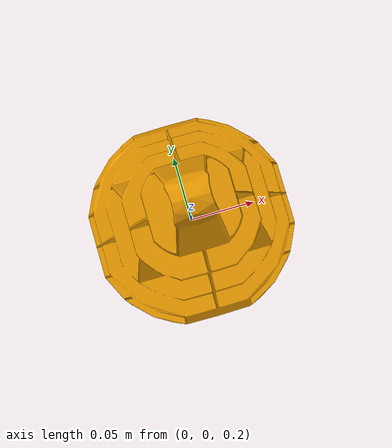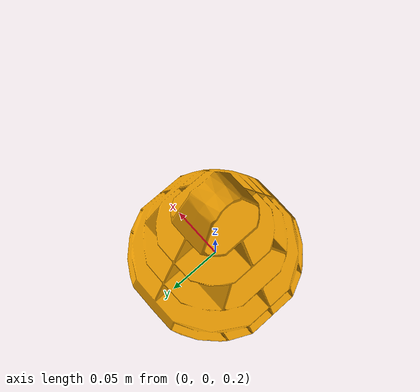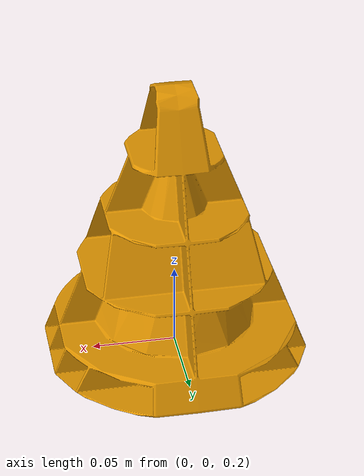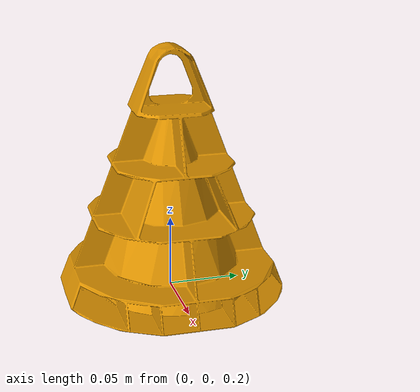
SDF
<?xml version="1.0"?>
<sdf version="1.6">
    <model name="Vex Cone">
      <pose>0 0 0.2  0 0 0</pose>
 <maxVel>0.0</maxVel>
<minDepth>0.001</minDepth>
<mu1>0.8</mu1>
      <static>false</static>
      <link name="body">
<collision name = "collision">
	<geometry>
	<pose>0 0 0 0 0 0</pose>
	<mesh><uri>file://catkin_ws/src/gazebosim/gazeboSimulation/Collisions/ConeCollision.dae</uri></mesh>
	</geometry>
       </collision>

    <inertial>
    <mass value="0.118"/>
    <pose>0 0 0.04  0 0 0</pose>
    <inertia ixx="1.0" ixy="0.0" ixz="0.0" iyy="1.0" iyz="0.0" izz="1.0"/>
    </inertial>

        <visual name="visual">
          <geometry>
            <mesh><uri>file://catkin_ws/src/gazebosim/gazeboSimulation/meshes/Cone.dae</uri></mesh>
          </geometry>
        </visual>

      </link>

    </model>
</sdf>
